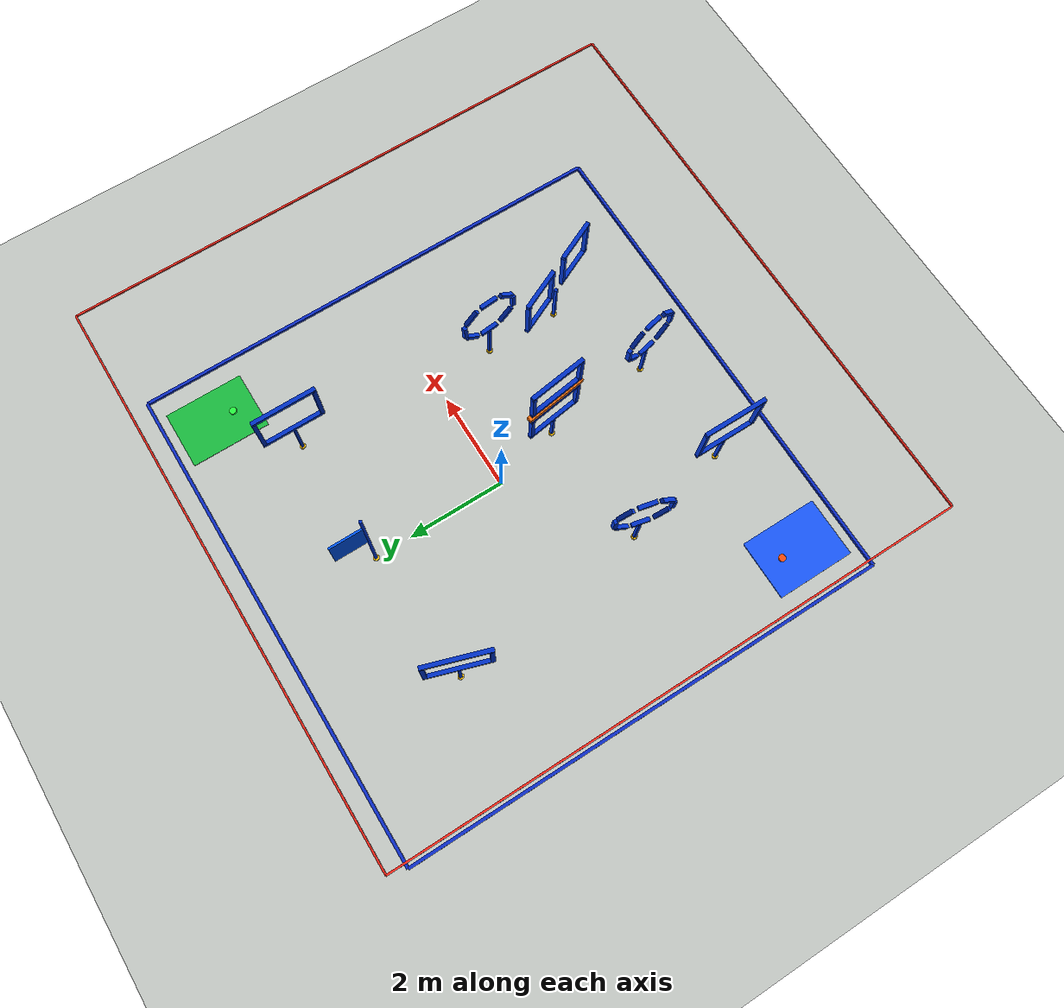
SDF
<?xml version="1.0" encoding="UTF-8"?>
<sdf version="1.9">
  <world name="robocup_2025_baseline">
    <physics type="ode">
      <max_step_size>0.004</max_step_size>
      <real_time_factor>1.0</real_time_factor>
      <real_time_update_rate>250</real_time_update_rate>
    </physics>
    <gravity>0 0 -9.8</gravity>
    <magnetic_field>6e-06 2.3e-05 -4.2e-05</magnetic_field>
    <atmosphere type="adiabatic"/>
    <scene>
      <grid>false</grid>
      <ambient>0.45 0.45 0.45 1</ambient>
      <background>0.72 0.74 0.76 1</background>
      <shadows>false</shadows>
    </scene>

    <model name="ground_plane">
      <static>true</static>
      <link name="link">
        <collision name="collision">
          <geometry>
            <plane>
              <normal>0 0 1</normal>
              <size>1 1</size>
            </plane>
          </geometry>
        </collision>
        <visual name="visual">
          <geometry>
            <plane>
              <normal>0 0 1</normal>
              <size>14 14</size>
            </plane>
          </geometry>
          <material>
            <ambient>0.78 0.80 0.78 1</ambient>
            <diffuse>0.78 0.80 0.78 1</diffuse>
            <specular>0.2 0.2 0.2 1</specular>
          </material>
        </visual>
      </link>
    </model>

    <light name="sunUTC" type="directional">
      <pose>0 0 500 0 0 0</pose>
      <cast_shadows>false</cast_shadows>
      <intensity>0.9</intensity>
      <direction>0.001 0.625 -0.78</direction>
      <diffuse>0.904 0.904 0.904 1</diffuse>
      <specular>0.271 0.271 0.271 1</specular>
      <attenuation>
        <range>2000</range>
        <linear>0</linear>
        <constant>1</constant>
        <quadratic>0</quadratic>
      </attenuation>
    </light>

    <spherical_coordinates>
      <surface_model>EARTH_WGS84</surface_model>
      <world_frame_orientation>ENU</world_frame_orientation>
      <latitude_deg>47.397971057728974</latitude_deg>
      <longitude_deg>8.546163739800146</longitude_deg>
      <elevation>0</elevation>
    </spherical_coordinates>

    <!-- 10 m x 10 m competition boundary and 4 m ceiling reference. -->
    <model name="field_boundary">
      <static>true</static>
      <link name="north"><pose>0 5 0.035 0 0 0</pose><visual name="visual"><geometry><box><size>10 0.06 0.07</size></box></geometry><material><diffuse>0.05 0.18 0.8 1</diffuse></material></visual></link>
      <link name="south"><pose>0 -5 0.035 0 0 0</pose><visual name="visual"><geometry><box><size>10 0.06 0.07</size></box></geometry><material><diffuse>0.05 0.18 0.8 1</diffuse></material></visual></link>
      <link name="east"><pose>5 0 0.035 0 0 0</pose><visual name="visual"><geometry><box><size>0.06 10 0.07</size></box></geometry><material><diffuse>0.05 0.18 0.8 1</diffuse></material></visual></link>
      <link name="west"><pose>-5 0 0.035 0 0 0</pose><visual name="visual"><geometry><box><size>0.06 10 0.07</size></box></geometry><material><diffuse>0.05 0.18 0.8 1</diffuse></material></visual></link>
      <link name="ceiling_north"><pose>0 5 4.0 0 0 0</pose><visual name="visual"><geometry><box><size>10 0.03 0.03</size></box></geometry><material><diffuse>1 0.15 0.1 1</diffuse></material></visual></link>
      <link name="ceiling_south"><pose>0 -5 4.0 0 0 0</pose><visual name="visual"><geometry><box><size>10 0.03 0.03</size></box></geometry><material><diffuse>1 0.15 0.1 1</diffuse></material></visual></link>
      <link name="ceiling_east"><pose>5 0 4.0 0 0 0</pose><visual name="visual"><geometry><box><size>0.03 10 0.03</size></box></geometry><material><diffuse>1 0.15 0.1 1</diffuse></material></visual></link>
      <link name="ceiling_west"><pose>-5 0 4.0 0 0 0</pose><visual name="visual"><geometry><box><size>0.03 10 0.03</size></box></geometry><material><diffuse>1 0.15 0.1 1</diffuse></material></visual></link>
    </model>

    <model name="start_zone">
      <pose>-4 -4 0.011 0 0 0</pose>
      <static>true</static>
      <link name="visual_only">
        <visual name="visual">
          <geometry><box><size>1.2 1.6 0.02</size></box></geometry>
          <material><ambient>0.1 0.35 1 1</ambient><diffuse>0.1 0.35 1 1</diffuse></material>
        </visual>
        <collision name="collision">
          <geometry><box><size>1.2 1.6 0.02</size></box></geometry>
        </collision>
      </link>
    </model>

    <model name="landing_zone">
      <pose>4 4 0.012 0 0 0</pose>
      <static>true</static>
      <link name="visual_only">
        <visual name="visual">
          <geometry><box><size>1.2 1.6 0.02</size></box></geometry>
          <material><ambient>0.1 0.75 0.25 1</ambient><diffuse>0.1 0.75 0.25 1</diffuse></material>
        </visual>
        <collision name="collision">
          <geometry><box><size>1.2 1.6 0.02</size></box></geometry>
        </collision>
      </link>
    </model>

    <!-- Reusable obstacle models placed along the dashed S-shaped rule-book path. -->
    <include>
      <name>path_01_obs1_square_gate</name>
      <uri>model://robocup_obs1_square_gate</uri>
      <pose>-1.70 -3.75 0 0 0 0.000000</pose>
    </include>
    <include>
      <name>path_02_obs2_round_gate</name>
      <uri>model://robocup_obs2_round_gate</uri>
      <pose>0.55 -3.55 0 0 0 0.209440</pose>
    </include>
    <include>
      <name>path_03_obs3_double_gate</name>
      <uri>model://robocup_obs3_double_gate</uri>
      <pose>2.45 -2.75 0 0 0 0.436332</pose>
    </include>
    <include>
      <name>path_04_obs2_round_gate</name>
      <uri>model://robocup_obs2_round_gate</uri>
      <pose>2.45 -1.25 0 0 0 0.087266</pose>
    </include>
    <include>
      <name>path_05_obs4_flip_gate</name>
      <uri>model://robocup_obs4_flip_gate</uri>
      <pose>0.35 -1.35 0 0 0 0.139626</pose>
    </include>
    <include>
      <name>path_06_obs2_round_gate</name>
      <uri>model://robocup_obs2_round_gate</uri>
      <pose>-2.20 -1.55 0 0 0 -0.209440</pose>
    </include>
    <include>
      <name>path_07_obs1_square_gate</name>
      <uri>model://robocup_obs1_square_gate</uri>
      <pose>-2.70 2.55 0 0 0 -0.314159</pose>
    </include>
    <include>
      <name>path_08_obs5_flag</name>
      <uri>model://robocup_obs5_flag</uri>
      <pose>0.00 2.75 0 0 0 0.000000</pose>
    </include>
    <include>
      <name>path_09_obs1_square_gate</name>
      <uri>model://robocup_obs1_square_gate</uri>
      <pose>2.65 2.85 0 0 0 0.000000</pose>
    </include>

    <model name="baseline_route_markers">
      <static>true</static>
      <link name="takeoff"><pose>-4.0 -3.65 0.04 0 0 0</pose><visual name="visual"><geometry><cylinder><radius>0.07</radius><length>0.04</length></cylinder></geometry><material><diffuse>1.0 0.30 0.05 1</diffuse></material></visual></link>
      <link name="path_01"><pose>-1.70 -3.75 0.04 0 0 0</pose><visual name="visual"><geometry><cylinder><radius>0.06</radius><length>0.04</length></cylinder></geometry><material><diffuse>1.0 0.78 0.05 1</diffuse></material></visual></link>
      <link name="path_02"><pose>0.55 -3.55 0.04 0 0 0</pose><visual name="visual"><geometry><cylinder><radius>0.06</radius><length>0.04</length></cylinder></geometry><material><diffuse>1.0 0.78 0.05 1</diffuse></material></visual></link>
      <link name="path_03"><pose>2.45 -2.75 0.04 0 0 0</pose><visual name="visual"><geometry><cylinder><radius>0.06</radius><length>0.04</length></cylinder></geometry><material><diffuse>1.0 0.78 0.05 1</diffuse></material></visual></link>
      <link name="path_04"><pose>2.45 -1.25 0.04 0 0 0</pose><visual name="visual"><geometry><cylinder><radius>0.06</radius><length>0.04</length></cylinder></geometry><material><diffuse>1.0 0.78 0.05 1</diffuse></material></visual></link>
      <link name="path_05"><pose>0.35 -1.35 0.04 0 0 0</pose><visual name="visual"><geometry><cylinder><radius>0.06</radius><length>0.04</length></cylinder></geometry><material><diffuse>1.0 0.78 0.05 1</diffuse></material></visual></link>
      <link name="path_06"><pose>-2.20 -1.55 0.04 0 0 0</pose><visual name="visual"><geometry><cylinder><radius>0.06</radius><length>0.04</length></cylinder></geometry><material><diffuse>1.0 0.78 0.05 1</diffuse></material></visual></link>
      <link name="path_07"><pose>-2.70 2.55 0.04 0 0 0</pose><visual name="visual"><geometry><cylinder><radius>0.06</radius><length>0.04</length></cylinder></geometry><material><diffuse>1.0 0.78 0.05 1</diffuse></material></visual></link>
      <link name="path_08"><pose>0.00 2.75 0.04 0 0 0</pose><visual name="visual"><geometry><cylinder><radius>0.06</radius><length>0.04</length></cylinder></geometry><material><diffuse>1.0 0.78 0.05 1</diffuse></material></visual></link>
      <link name="path_09"><pose>2.65 2.85 0.04 0 0 0</pose><visual name="visual"><geometry><cylinder><radius>0.06</radius><length>0.04</length></cylinder></geometry><material><diffuse>1.0 0.78 0.05 1</diffuse></material></visual></link>
      <link name="landing"><pose>4.0 3.65 0.04 0 0 0</pose><visual name="visual"><geometry><cylinder><radius>0.07</radius><length>0.04</length></cylinder></geometry><material><diffuse>0.15 1.0 0.25 1</diffuse></material></visual></link>
    </model>
  </world>
</sdf>

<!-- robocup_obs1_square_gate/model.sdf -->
<sdf version="1.9">
  <model name="robocup_obs1_square_gate">
    <static>true</static>
    <link name="left_bar">
      <pose>0 -0.60 1.60 0 0 0</pose>
      <visual name="visual">
        <geometry><box><size>0.08 0.08 1.08</size></box></geometry>
        <material><diffuse>0.0 0.20 0.80 1</diffuse></material>
      </visual>
    </link>
    <link name="right_bar">
      <pose>0 0.60 1.60 0 0 0</pose>
      <visual name="visual">
        <geometry><box><size>0.08 0.08 1.08</size></box></geometry>
        <material><diffuse>0.0 0.20 0.80 1</diffuse></material>
      </visual>
    </link>
    <link name="top_bar">
      <pose>0 0 2.14 0 0 0</pose>
      <visual name="visual">
        <geometry><box><size>0.08 1.28 0.08</size></box></geometry>
        <material><diffuse>0.0 0.20 0.80 1</diffuse></material>
      </visual>
    </link>
    <link name="bottom_bar">
      <pose>0 0 1.06 0 0 0</pose>
      <visual name="visual">
        <geometry><box><size>0.08 1.28 0.08</size></box></geometry>
        <material><diffuse>0.0 0.20 0.80 1</diffuse></material>
      </visual>
    </link>
    <link name="support">
      <pose>0 0 0.53 0 0 0</pose>
      <visual name="visual">
        <geometry><box><size>0.06 0.06 1.06</size></box></geometry>
        <material><diffuse>0.0 0.20 0.80 1</diffuse></material>
      </visual>
    </link>
  </model>
</sdf>

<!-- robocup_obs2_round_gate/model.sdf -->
<sdf version="1.9">
  <model name="robocup_obs2_round_gate">
    <static>true</static>
    <link name="seg0"><pose>0 0.55 1.60 1.5708 0 0</pose><visual name="visual"><geometry><box><size>0.08 0.36 0.08</size></box></geometry><material><diffuse>0.0 0.20 0.80 1</diffuse></material></visual></link>
    <link name="seg1"><pose>0 0.389 1.989 2.35619 0 0</pose><visual name="visual"><geometry><box><size>0.08 0.36 0.08</size></box></geometry><material><diffuse>0.0 0.20 0.80 1</diffuse></material></visual></link>
    <link name="seg2"><pose>0 0 2.15 3.14159 0 0</pose><visual name="visual"><geometry><box><size>0.08 0.36 0.08</size></box></geometry><material><diffuse>0.0 0.20 0.80 1</diffuse></material></visual></link>
    <link name="seg3"><pose>0 -0.389 1.989 3.92699 0 0</pose><visual name="visual"><geometry><box><size>0.08 0.36 0.08</size></box></geometry><material><diffuse>0.0 0.20 0.80 1</diffuse></material></visual></link>
    <link name="seg4"><pose>0 -0.55 1.60 4.71239 0 0</pose><visual name="visual"><geometry><box><size>0.08 0.36 0.08</size></box></geometry><material><diffuse>0.0 0.20 0.80 1</diffuse></material></visual></link>
    <link name="seg5"><pose>0 -0.389 1.211 5.49779 0 0</pose><visual name="visual"><geometry><box><size>0.08 0.36 0.08</size></box></geometry><material><diffuse>0.0 0.20 0.80 1</diffuse></material></visual></link>
    <link name="seg6"><pose>0 0 1.05 0 0 0</pose><visual name="visual"><geometry><box><size>0.08 0.36 0.08</size></box></geometry><material><diffuse>0.0 0.20 0.80 1</diffuse></material></visual></link>
    <link name="seg7"><pose>0 0.389 1.211 0.7854 0 0</pose><visual name="visual"><geometry><box><size>0.08 0.36 0.08</size></box></geometry><material><diffuse>0.0 0.20 0.80 1</diffuse></material></visual></link>
    <link name="support">
      <pose>0 0 0.53 0 0 0</pose>
      <visual name="visual">
        <geometry><box><size>0.06 0.06 1.06</size></box></geometry>
        <material><diffuse>0.0 0.20 0.80 1</diffuse></material>
      </visual>
    </link>
  </model>
</sdf>

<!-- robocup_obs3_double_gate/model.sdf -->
<sdf version="1.9">
  <model name="robocup_obs3_double_gate">
    <static>true</static>

    <link name="left_gate_left_bar"><pose>0 -1.00 1.60 0 0 0</pose><visual name="visual"><geometry><box><size>0.08 0.08 0.98</size></box></geometry><material><diffuse>0.0 0.20 0.80 1</diffuse></material></visual></link>
    <link name="left_gate_right_bar"><pose>0 -0.20 1.60 0 0 0</pose><visual name="visual"><geometry><box><size>0.08 0.08 0.98</size></box></geometry><material><diffuse>0.0 0.20 0.80 1</diffuse></material></visual></link>
    <link name="left_gate_top_bar"><pose>0 -0.60 2.09 0 0 0</pose><visual name="visual"><geometry><box><size>0.08 0.88 0.08</size></box></geometry><material><diffuse>0.0 0.20 0.80 1</diffuse></material></visual></link>
    <link name="left_gate_bottom_bar"><pose>0 -0.60 1.11 0 0 0</pose><visual name="visual"><geometry><box><size>0.08 0.88 0.08</size></box></geometry><material><diffuse>0.0 0.20 0.80 1</diffuse></material></visual></link>

    <link name="right_gate_left_bar"><pose>0 0.20 1.60 0 0 0</pose><visual name="visual"><geometry><box><size>0.08 0.08 0.98</size></box></geometry><material><diffuse>0.0 0.20 0.80 1</diffuse></material></visual></link>
    <link name="right_gate_right_bar"><pose>0 1.00 1.60 0 0 0</pose><visual name="visual"><geometry><box><size>0.08 0.08 0.98</size></box></geometry><material><diffuse>0.0 0.20 0.80 1</diffuse></material></visual></link>
    <link name="right_gate_top_bar"><pose>0 0.60 2.09 0 0 0</pose><visual name="visual"><geometry><box><size>0.08 0.88 0.08</size></box></geometry><material><diffuse>0.0 0.20 0.80 1</diffuse></material></visual></link>
    <link name="right_gate_bottom_bar"><pose>0 0.60 1.11 0 0 0</pose><visual name="visual"><geometry><box><size>0.08 0.88 0.08</size></box></geometry><material><diffuse>0.0 0.20 0.80 1</diffuse></material></visual></link>

    <link name="center_support">
      <pose>0 0 0.55 0 0 0</pose>
      <visual name="visual">
        <geometry><box><size>0.06 0.06 1.10</size></box></geometry>
        <material><diffuse>0.0 0.20 0.80 1</diffuse></material>
      </visual>
    </link>
  </model>
</sdf>

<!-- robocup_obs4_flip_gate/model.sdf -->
<sdf version="1.9">
  <model name="robocup_obs4_flip_gate">
    <static>true</static>
    <link name="lower_left_bar"><pose>0 -0.54 1.25 0 0 0</pose><visual name="visual"><geometry><box><size>0.08 0.08 0.78</size></box></geometry><material><diffuse>0.0 0.20 0.80 1</diffuse></material></visual></link>
    <link name="lower_right_bar"><pose>0 0.54 1.25 0 0 0</pose><visual name="visual"><geometry><box><size>0.08 0.08 0.78</size></box></geometry><material><diffuse>0.0 0.20 0.80 1</diffuse></material></visual></link>
    <link name="lower_top_bar"><pose>0 0 1.64 0 0 0</pose><visual name="visual"><geometry><box><size>0.08 1.16 0.08</size></box></geometry><material><diffuse>0.0 0.20 0.80 1</diffuse></material></visual></link>
    <link name="lower_bottom_bar"><pose>0 0 0.86 0 0 0</pose><visual name="visual"><geometry><box><size>0.08 1.16 0.08</size></box></geometry><material><diffuse>0.0 0.20 0.80 1</diffuse></material></visual></link>

    <link name="upper_left_bar"><pose>0 -0.54 2.35 0 0 0</pose><visual name="visual"><geometry><box><size>0.08 0.08 0.78</size></box></geometry><material><diffuse>0.0 0.20 0.80 1</diffuse></material></visual></link>
    <link name="upper_right_bar"><pose>0 0.54 2.35 0 0 0</pose><visual name="visual"><geometry><box><size>0.08 0.08 0.78</size></box></geometry><material><diffuse>0.0 0.20 0.80 1</diffuse></material></visual></link>
    <link name="upper_top_bar"><pose>0 0 2.74 0 0 0</pose><visual name="visual"><geometry><box><size>0.08 1.16 0.08</size></box></geometry><material><diffuse>0.0 0.20 0.80 1</diffuse></material></visual></link>
    <link name="upper_bottom_bar"><pose>0 0 1.96 0 0 0</pose><visual name="visual"><geometry><box><size>0.08 1.16 0.08</size></box></geometry><material><diffuse>0.0 0.20 0.80 1</diffuse></material></visual></link>

    <link name="middle_crossbar"><pose>0 0 1.80 0 0 0</pose><visual name="visual"><geometry><box><size>0.10 1.24 0.10</size></box></geometry><material><diffuse>1.0 0.45 0.05 1</diffuse></material></visual></link>
    <link name="support"><pose>0 0 0.43 0 0 0</pose><visual name="visual"><geometry><box><size>0.06 0.06 0.86</size></box></geometry><material><diffuse>0.0 0.20 0.80 1</diffuse></material></visual></link>
  </model>
</sdf>

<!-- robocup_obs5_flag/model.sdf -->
<sdf version="1.9">
  <model name="robocup_obs5_flag">
    <static>true</static>
    <link name="pole">
      <pose>0 0 1.30 0 0 0</pose>
      <visual name="visual">
        <geometry><cylinder><radius>0.03</radius><length>2.60</length></cylinder></geometry>
        <material><diffuse>0.0 0.20 0.80 1</diffuse></material>
      </visual>
    </link>
    <link name="flag">
      <pose>0 0.34 1.75 0 0 0</pose>
      <visual name="visual">
        <geometry><box><size>0.04 0.68 0.85</size></box></geometry>
        <material><diffuse>0.0 0.35 1.0 1</diffuse></material>
      </visual>
    </link>
  </model>
</sdf>
